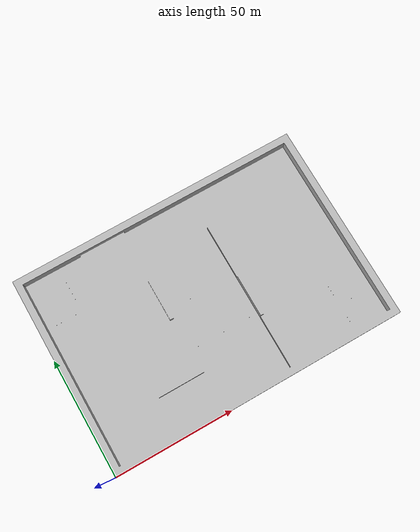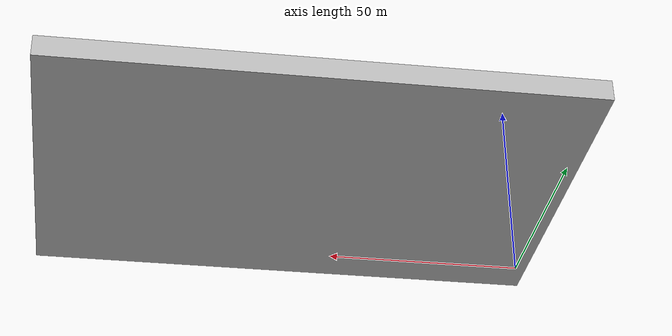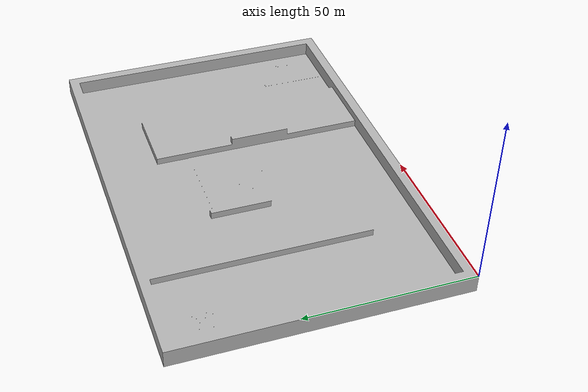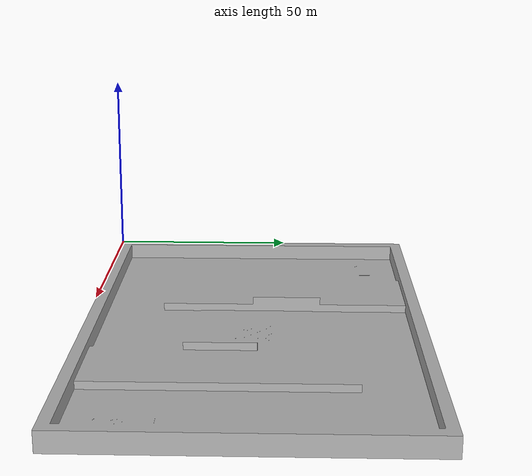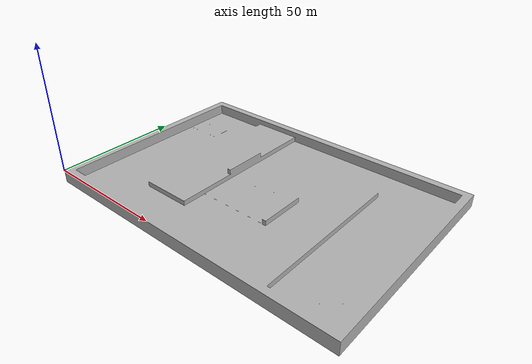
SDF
<?xml version='1.0'?>
<sdf version='1.6'>
  <model name='rmul_2026'>
    <static>true</static>
    <link name='body'>
      <pose frame=''>0 0 0 0 0 0</pose>
      <self_collide>0</self_collide>
      <kinematic>0</kinematic>
      <gravity>1</gravity>
      <visual name='visual'>
        <geometry>
          <mesh>
            <uri>model://rmul_2026/meshes/rmul2026.stl</uri>
            <scale>1 1 1</scale>
          </mesh>
        </geometry>
        <material>
          <ambient>0.3 0.3 0.3 1</ambient>
          <diffuse>0.7 0.7 0.7 1</diffuse>
          <specular>0.01 0.01 0.01 1</specular>
        </material>
      </visual>
      <collision name='collision'>
        <geometry>
          <mesh>
            <uri>model://rmul_2026/meshes/rmul2026.stl</uri>
            <scale>1 1 1</scale>
          </mesh>
        </geometry>
      </collision>
    </link>
  </model>
</sdf>
